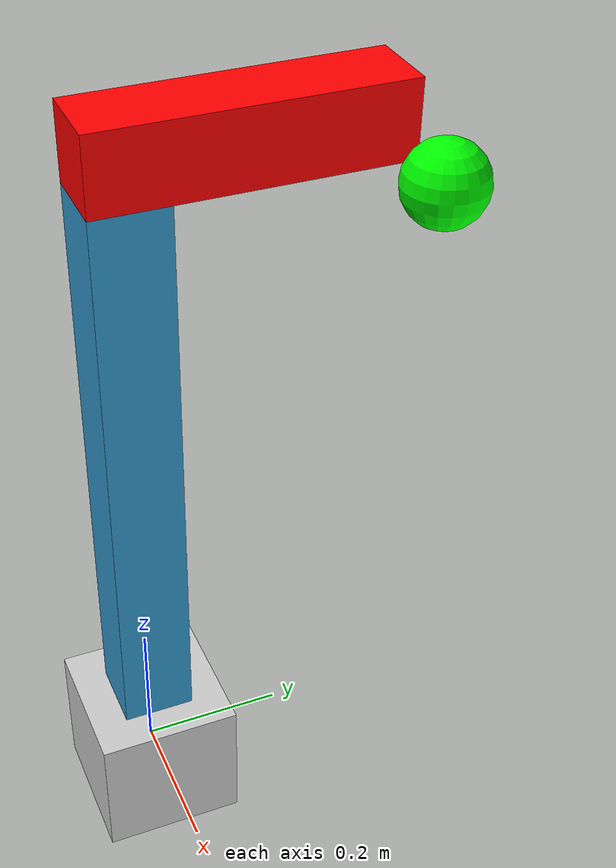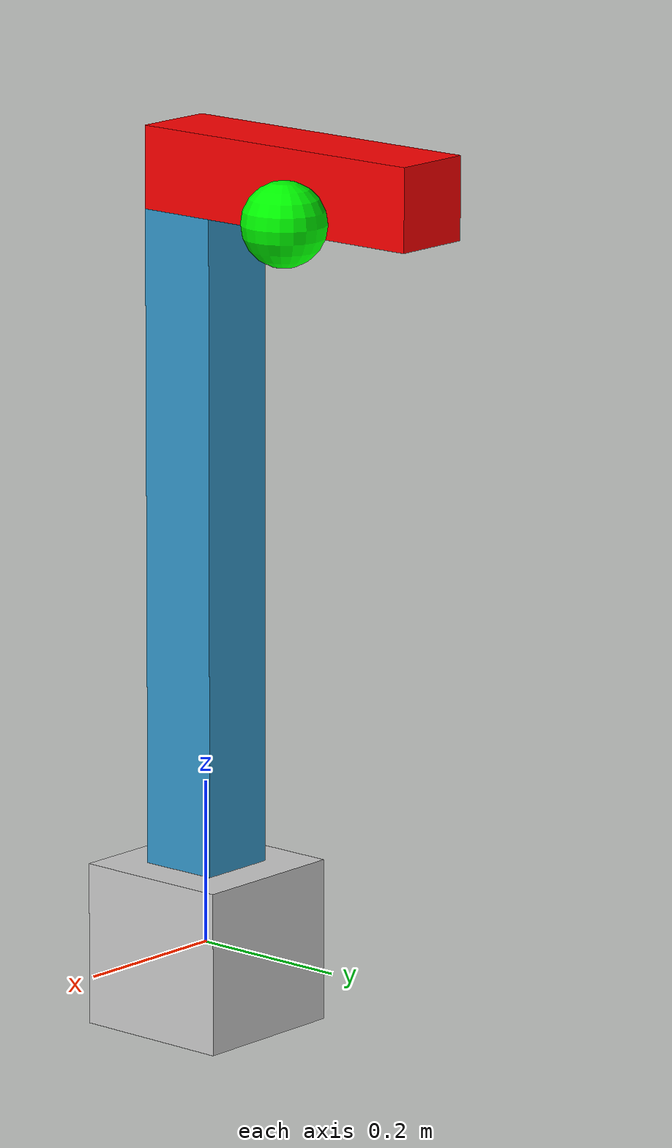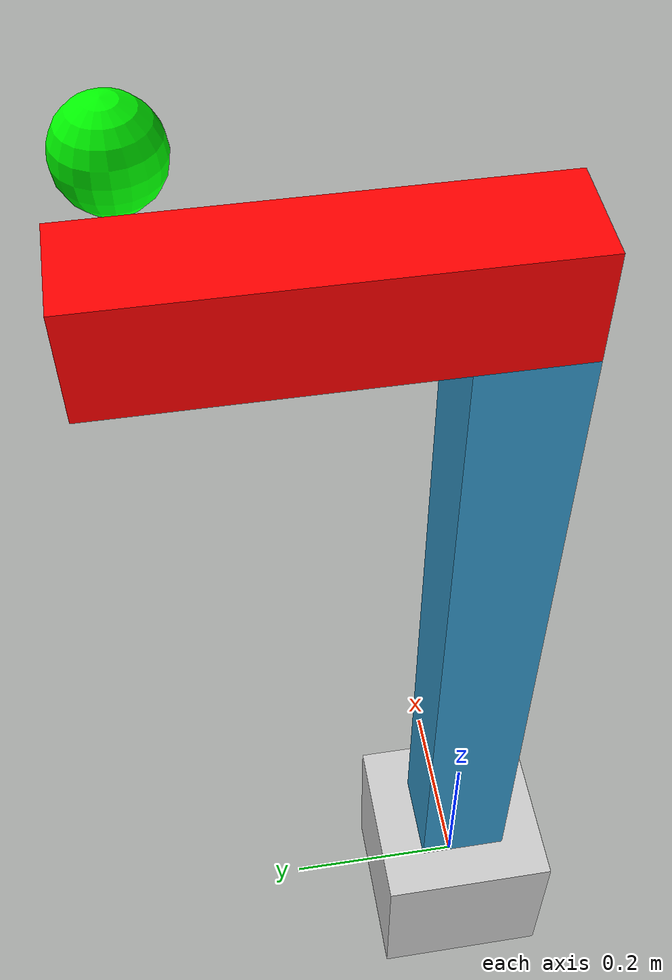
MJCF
<mujoco model="simple_arm">
  <compiler angle="degree"/>
  <option integrator="RK4" timestep="0.01"/>

  <visual>
    <global offheight="720"/>
  </visual>

  <worldbody>
    <light name="main_light" pos="0 1 2" dir="0 -1 -1"/>
    <camera name="my_camera" mode="targetbody" pos="0 1 3" target="arm"/>

    <!-- Define the base of the robot -->
    <body name="base" pos="0 0 0">
      <geom type="box" size="0.1 0.1 0.1" rgba="0.8 0.8 0.8 1"/>

      <!-- Define the rotating arm -->
      <body name="arm" pos="0 0 0.1">
        <joint name="arm_joint" type="hinge" axis="0 0 1"/>
        <geom name="arm_body" type="box" size="0.05 0.05 0.4" pos="0 0 0.4" rgba="0.2 0.6 0.8 1"/>
        <geom name="arm_tip" type="box" size="0.05 0.2 0.05" pos="0 0.15 0.85" rgba="1 0 0 1"/>
      </body>
    </body>

    <body name="ball" pos="0.2 0.3 0.95">
      <geom name="ball_geom" type="sphere" size="0.05" rgba="0 1 0 1" contype="0" conaffinity="0"/>
    </body>

  </worldbody>

  <actuator>
    <motor joint="arm_joint" ctrlrange="-1 1" ctrllimited="true"/>
  </actuator>
</mujoco>
